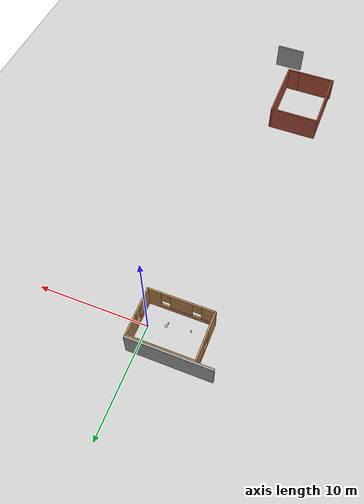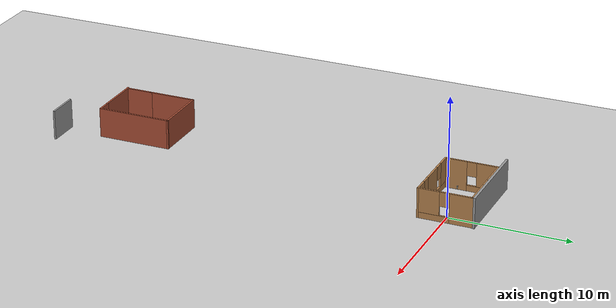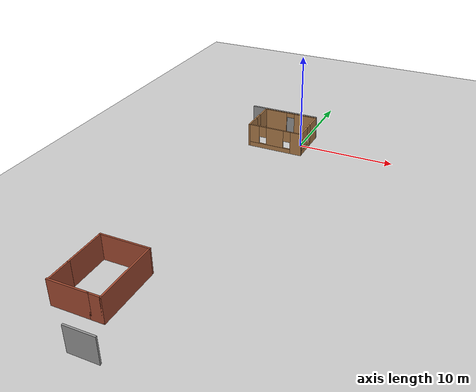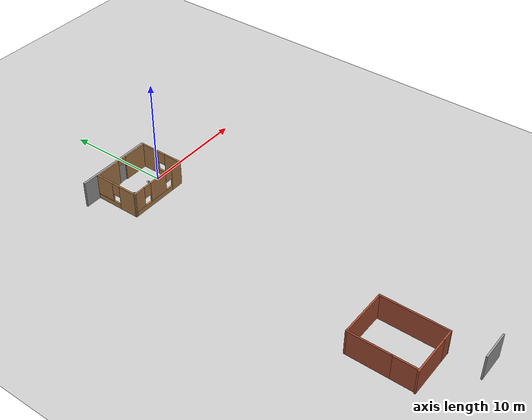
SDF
<sdf version="1.6">
 <world name="default">
  <light name="sun" type="directional">
   <pose>0 0 10 0 -0 0</pose>
   <diffuse>0.8 0.8 0.8 1</diffuse>
   <specular>0.2 0.2 0.2 1</specular>
   <attenuation>
    <range>1000</range>
    <constant>0.9</constant>
    <linear>0.01</linear>
    <quadratic>0.001</quadratic>
   </attenuation>
   <direction>-0.5 0.1 -0.9</direction>
  </light>
  <model name="ground_plane">
   <static>1</static>
   <link name="link">
    <collision name="collision">
     <geometry><plane><normal>0 0 1</normal><size>100 100</size></plane></geometry>
     <surface><friction><ode><mu>100</mu><mu2>50</mu2></ode></friction></surface>
    </collision>
    <visual name="visual">
     <cast_shadows>0</cast_shadows>
     <geometry><plane><normal>0 0 1</normal><size>100 100</size></plane></geometry>
     <material>
      <script><uri>file://media/materials/scripts/gazebo.material</uri><name>Gazebo/Grey</name></script>
     </material>
    </visual>
   </link>
  </model>
  <gravity>0 0 -1</gravity>
  <magnetic_field>6e-06 2.3e-05 -4.2e-05</magnetic_field>
  <atmosphere type="adiabatic"/>
  <physics name="default_physics" default="0" type="ode">
   <max_step_size>0.001</max_step_size>
   <real_time_factor>1</real_time_factor>
   <real_time_update_rate>1000</real_time_update_rate>
  </physics>
  <scene><ambient>0.4 0.4 0.4 1</ambient><background>0.7 0.7 0.7 1</background><shadows>1</shadows></scene>
  <audio><device>default</device></audio>
  <spherical_coordinates>
   <surface_model>EARTH_WGS84</surface_model>
   <latitude_deg>0</latitude_deg>
   <longitude_deg>0</longitude_deg>
   <elevation>0</elevation>
   <heading_deg>0</heading_deg>
  </spherical_coordinates>
  <model name="beer">
   <link name="link">
    <pose>0 0 0.115 0 -0 0</pose>
    <inertial>
     <mass>0.39</mass>
     <inertia><ixx>0.00058</ixx><ixy>0</ixy><ixz>0</ixz><iyy>0.00058</iyy><iyz>0</iyz><izz>0.00019</izz></inertia>
    </inertial>
    <collision name="collision">
     <geometry><cylinder><radius>0.055</radius><length>0.23</length></cylinder></geometry>
    </collision>
    <visual name="visual">
     <geometry><cylinder><radius>0.055</radius><length>0.23</length></cylinder></geometry>
     <material>
      <script>
       <uri>model://beer/materials/scripts</uri>
       <uri>model://beer/materials/textures</uri>
       <name>Beer/Diffuse</name>
      </script>
     </material>
    </visual>
   </link>
   <pose>-3.61997 -0.523036 0.774999 -2e-06 -1e-06 0.045468</pose>
  </model>
  <model name="ball_bearing">
   <link name="link">
    <pose>0 0 0.003 0 -0 0</pose>
    <inertial>
     <mass>0.0011</mass>
     <inertia>
      <ixx>3.96e-09</ixx>
      <ixy>0</ixy>
      <ixz>0</ixz>
      <iyy>3.96e-09</iyy>
      <iyz>0</iyz>
      <izz>3.96e-09</izz>
     </inertia>
    </inertial>
    <collision name="collision">
     <geometry><sphere><radius>0.003</radius></sphere></geometry>
     <surface>
      <contact>
       <poissons_ratio>0.305</poissons_ratio>
       <elastic_modulus>2e+11</elastic_modulus>
       <ode><kp>100000</kp><kd>100</kd><max_vel>100</max_vel><min_depth>0.001</min_depth></ode>
      </contact>
      <friction>
       <torsional>
        <coefficient>1</coefficient>
        <use_patch_radius>0</use_patch_radius>
        <surface_radius>0.01</surface_radius>
       </torsional>
      </friction>
     </surface>
    </collision>
    <visual name="visual">
     <geometry><sphere><radius>0.003</radius></sphere></geometry>
     <material>
      <script><uri>file://media/materials/scripts/gazebo.material</uri><name>Gazebo/Grey</name></script>
     </material>
    </visual>
    <velocity_decay><linear>0</linear><angular>0.005</angular></velocity_decay>
   </link>
   <pose>-1.8564 -0.002291 -0.001 0.000235 0.007912 1e-06</pose>
  </model>
  <model name="wall">
   <pose>-3.97543 -29.7286 0 0 -0 0</pose>
   <link name="Wall_0">
    <collision name="Wall_0_Collision">
     <geometry><box><size>2.75 0.15 2.5</size></box></geometry>
     <pose>0 0 1.25 0 -0 0</pose>
    </collision>
    <visual name="Wall_0_Visual">
     <pose>0 0 1.25 0 -0 0</pose>
     <geometry><box><size>2.75 0.15 2.5</size></box></geometry>
     <material>
      <script><uri>file://media/materials/scripts/gazebo.material</uri><name>Gazebo/Grey</name></script>
      <ambient>1 1 1 1</ambient>
     </material>
     <meta><layer>0</layer></meta>
    </visual>
    <pose>2.0521 -4.6544 0 0 -0 0</pose>
   </link>
   <link name="Wall_10">
    <collision name="Wall_10_Collision">
     <geometry><box><size>2.25 0.15 2.5</size></box></geometry>
     <pose>0 0 1.25 0 -0 0</pose>
    </collision>
    <visual name="Wall_10_Visual">
     <pose>0 0 1.25 0 -0 0</pose>
     <geometry><box><size>2.25 0.15 2.5</size></box></geometry>
     <material>
      <script><uri>file://media/materials/scripts/gazebo.material</uri><name>Gazebo/Bricks</name></script>
      <ambient>1 1 1 1</ambient>
     </material>
     <meta><layer>0</layer></meta>
    </visual>
    <pose>-3.2521 -0.245601 0 0 -0 -1.5708</pose>
   </link>
   <link name="Wall_13">
    <collision name="Wall_13_Collision">
     <geometry><box><size>3.75 0.15 2.5</size></box></geometry>
     <pose>0 0 1.25 0 -0 0</pose>
    </collision>
    <visual name="Wall_13_Visual">
     <pose>0 0 1.25 0 -0 0</pose>
     <geometry><box><size>3.75 0.15 2.5</size></box></geometry>
     <material>
      <script><uri>file://media/materials/scripts/gazebo.material</uri><name>Gazebo/Bricks</name></script>
      <ambient>1 1 1 1</ambient>
     </material>
     <meta><layer>0</layer></meta>
    </visual>
    <pose>-1.5521 -1.4456 0 0 -0 3.14159</pose>
   </link>
   <link name="Wall_2">
    <collision name="Wall_2_Collision">
     <geometry><box><size>1.25 0.15 2.5</size></box></geometry>
     <pose>0 0 1.25 0 -0 0</pose>
    </collision>
    <visual name="Wall_2_Visual">
     <pose>0 0 1.25 0 -0 0</pose>
     <geometry><box><size>1.25 0.15 2.5</size></box></geometry>
     <material>
      <script><uri>file://media/materials/scripts/gazebo.material</uri><name>Gazebo/Bricks</name></script>
      <ambient>1 1 1 1</ambient>
     </material>
     <meta><layer>0</layer></meta>
    </visual>
    <pose>0.797899 -1.4456 0 0 -0 0</pose>
   </link>
   <link name="Wall_3">
    <collision name="Wall_3_Collision">
     <geometry><box><size>6.25 0.15 2.5</size></box></geometry>
     <pose>0 0 1.25 0 -0 0</pose>
    </collision>
    <visual name="Wall_3_Visual">
     <pose>0 0 1.25 0 -0 0</pose>
     <geometry><box><size>6.25 0.15 2.5</size></box></geometry>
     <material>
      <script><uri>file://media/materials/scripts/gazebo.material</uri><name>Gazebo/Bricks</name></script>
      <ambient>1 1 1 1</ambient>
     </material>
     <meta><layer>0</layer></meta>
    </visual>
    <pose>1.3479 1.6044 0 0 -0 1.5708</pose>
   </link>
   <link name="Wall_7">
    <collision name="Wall_7_Collision">
     <geometry><box><size>4.75 0.15 2.5</size></box></geometry>
     <pose>0 0 1.25 0 -0 0</pose>
    </collision>
    <visual name="Wall_7_Visual">
     <pose>0 0 1.25 0 -0 0</pose>
     <geometry><box><size>4.75 0.15 2.5</size></box></geometry>
     <material>
      <script><uri>file://media/materials/scripts/gazebo.material</uri><name>Gazebo/Bricks</name></script>
      <ambient>1 1 1 1</ambient>
     </material>
     <meta><layer>0</layer></meta>
    </visual>
    <pose>-0.952101 4.6544 0 0 -0 3.14159</pose>
   </link>
   <link name="Wall_8">
    <collision name="Wall_8_Collision">
     <geometry><box><size>4 0.15 2.5</size></box></geometry>
     <pose>0 0 1.25 0 -0 0</pose>
    </collision>
    <visual name="Wall_8_Visual">
     <pose>0 0 1.25 0 -0 0</pose>
     <geometry><box><size>4 0.15 2.5</size></box></geometry>
     <material>
      <script><uri>file://media/materials/scripts/gazebo.material</uri><name>Gazebo/Bricks</name></script>
      <ambient>1 1 1 1</ambient>
     </material>
     <meta><layer>0</layer></meta>
    </visual>
    <pose>-3.2521 2.7294 0 0 -0 -1.5708</pose>
   </link>
   <static>1</static>
  </model>
  <model name="book_16">
   <link name="cover">
    <pose>0 -0.000108 0.015405 0 -0 0</pose>
    <visual name="visual">
     <geometry><box><size>0.245 0.16 0.03</size></box></geometry>
     <material>
      <script>
       <uri>model://book_16/materials/scripts</uri>
       <uri>model://book_16/materials/textures</uri>
       <name>book_16</name>
      </script>
     </material>
    </visual>
    <collision name="collision"><geometry><box><size>0.245 0.16 0.03</size></box></geometry></collision>
   </link>
   <link name="page">
    <pose>0 0.000608 0.015405 0 -0 0</pose>
    <visual name="visual">
     <geometry><box><size>0.24502 0.15862 0.028</size></box></geometry>
     <material>
      <lighting>1</lighting>
      <ambient>1 1 1 1</ambient>
      <diffuse>1 1 1 1</diffuse>
      <specular>0.01 0.01 0.01 1</specular>
      <emissive>0 0 0 1</emissive>
      <shader type="vertex"><normal_map>__default__</normal_map></shader>
     </material>
    </visual>
    <collision name="collision"><geometry><box><size>0.245 0.16 0.03</size></box></geometry></collision>
   </link>
   <static>1</static>
   <pose>-1.63684 -0.471015 0.897382 0.000432 -1.56136 0</pose>
  </model>
  <model name="book_15">
   <link name="cover">
    <pose>0 -0.000108 0.015405 0 -0 0</pose>
    <visual name="visual">
     <geometry><box><size>0.245 0.16 0.03</size></box></geometry>
     <material>
      <script>
       <uri>model://book_15/materials/scripts</uri>
       <uri>model://book_15/materials/textures</uri>
       <name>book_15</name>
      </script>
     </material>
    </visual>
    <collision name="collision"><geometry><box><size>0.245 0.16 0.03</size></box></geometry></collision>
   </link>
   <link name="page">
    <pose>0 0.000608 0.015405 0 -0 0</pose>
    <visual name="visual">
     <geometry><box><size>0.24502 0.15862 0.028</size></box></geometry>
     <material>
      <lighting>1</lighting>
      <ambient>1 1 1 1</ambient>
      <diffuse>1 1 1 1</diffuse>
      <specular>0.01 0.01 0.01 1</specular>
      <emissive>0 0 0 1</emissive>
      <shader type="vertex"><normal_map>__default__</normal_map></shader>
     </material>
    </visual>
    <collision name="collision"><geometry><box><size>0.245 0.16 0.03</size></box></geometry></collision>
   </link>
   <static>1</static>
   <pose>-1.54166 -0.245702 0.775787 0 0 -0.644159</pose>
  </model>
  <model name="wall6x45_4window_cloor">
   <pose>-2.15514 0.09856 0 0 -0 0</pose>
   <link name="Wall_0">
    <pose>0 2.175 0 0 -0 0</pose>
    <visual name="Wall_0_Visual_0">
     <pose>-1.7125 0 1.25 0 -0 0</pose>
     <geometry><box><size>2.575 0.15 2.5</size></box></geometry>
     <material>
      <script><uri>file://media/materials/scripts/gazebo.material</uri><name>Gazebo/Wood</name></script>
      <ambient>1 1 1 1</ambient>
     </material>
     <meta><layer>0</layer></meta>
    </visual>
    <collision name="Wall_0_Collision_0">
     <geometry><box><size>2.575 0.15 2.5</size></box></geometry>
     <pose>-1.7125 0 1.25 0 -0 0</pose>
    </collision>
    <visual name="Wall_0_Visual_1">
     <pose>1.7375 0 1.25 0 -0 0</pose>
     <geometry><box><size>2.525 0.15 2.5</size></box></geometry>
     <material>
      <script><uri>file://media/materials/scripts/gazebo.material</uri><name>Gazebo/Wood</name></script>
      <ambient>1 1 1 1</ambient>
     </material>
     <meta><layer>0</layer></meta>
    </visual>
    <collision name="Wall_0_Collision_1">
     <geometry><box><size>2.525 0.15 2.5</size></box></geometry>
     <pose>1.7375 0 1.25 0 -0 0</pose>
    </collision>
    <visual name="Wall_0_Visual_2">
     <pose>0.025 0 2.25 0 -0 0</pose>
     <geometry><box><size>0.9 0.15 0.5</size></box></geometry>
     <material>
      <script><uri>file://media/materials/scripts/gazebo.material</uri><name>Gazebo/Wood</name></script>
      <ambient>1 1 1 1</ambient>
     </material>
     <meta><layer>0</layer></meta>
    </visual>
    <collision name="Wall_0_Collision_2">
     <geometry><box><size>0.9 0.15 0.5</size></box></geometry>
     <pose>0.025 0 2.25 0 -0 0</pose>
    </collision>
   </link>
   <link name="Wall_1">
    <pose>2.925 -0 0 0 -0 -1.5708</pose>
    <visual name="Wall_1_Visual_0">
     <pose>-1.3075 0 1.25 0 -0 0</pose>
     <geometry><box><size>1.885 0.15 2.5</size></box></geometry>
     <material>
      <script><uri>file://media/materials/scripts/gazebo.material</uri><name>Gazebo/Wood</name></script>
      <ambient>1 1 1 1</ambient>
     </material>
     <meta><layer>0</layer></meta>
    </visual>
    <collision name="Wall_1_Collision_0">
     <geometry><box><size>1.885 0.15 2.5</size></box></geometry>
     <pose>-1.3075 0 1.25 0 -0 0</pose>
    </collision>
    <visual name="Wall_1_Visual_1">
     <pose>0.9425 0 0.25 0 -0 0</pose>
     <geometry><box><size>2.615 0.15 0.5</size></box></geometry>
     <material>
      <script><uri>file://media/materials/scripts/gazebo.material</uri><name>Gazebo/Wood</name></script>
      <ambient>1 1 1 1</ambient>
     </material>
     <meta><layer>0</layer></meta>
    </visual>
    <collision name="Wall_1_Collision_1">
     <geometry><box><size>2.615 0.15 0.5</size></box></geometry>
     <pose>0.9425 0 0.25 0 -0 0</pose>
    </collision>
    <visual name="Wall_1_Visual_2">
     <pose>1.3425 0 1.5 0 -0 0</pose>
     <geometry><box><size>1.815 0.15 2</size></box></geometry>
     <material>
      <script><uri>file://media/materials/scripts/gazebo.material</uri><name>Gazebo/Wood</name></script>
      <ambient>1 1 1 1</ambient>
     </material>
     <meta><layer>0</layer></meta>
    </visual>
    <collision name="Wall_1_Collision_2">
     <geometry><box><size>1.815 0.15 2</size></box></geometry>
     <pose>1.3425 0 1.5 0 -0 0</pose>
    </collision>
    <visual name="Wall_1_Visual_3">
     <pose>0.035 0 1.9 0 -0 0</pose>
     <geometry><box><size>0.8 0.15 1.2</size></box></geometry>
     <material>
      <script><uri>file://media/materials/scripts/gazebo.material</uri><name>Gazebo/Wood</name></script>
      <ambient>1 1 1 1</ambient>
     </material>
     <meta><layer>0</layer></meta>
    </visual>
    <collision name="Wall_1_Collision_3">
     <geometry><box><size>0.8 0.15 1.2</size></box></geometry>
     <pose>0.035 0 1.9 0 -0 0</pose>
    </collision>
   </link>
   <link name="Wall_2">
    <pose>0 -2.175 0 0 -0 3.14159</pose>
    <visual name="Wall_2_Visual_0">
     <pose>-2.3825 0 1.25 0 -0 0</pose>
     <geometry><box><size>1.235 0.15 2.5</size></box></geometry>
     <material>
      <script><uri>file://media/materials/scripts/gazebo.material</uri><name>Gazebo/Wood</name></script>
      <ambient>1 1 1 1</ambient>
     </material>
     <meta><layer>0</layer></meta>
    </visual>
    <collision name="Wall_2_Collision_0">
     <geometry><box><size>1.235 0.15 2.5</size></box></geometry>
     <pose>-2.3825 0 1.25 0 -0 0</pose>
    </collision>
    <visual name="Wall_2_Visual_1">
     <pose>0.6175 0 0.25 0 -0 0</pose>
     <geometry><box><size>4.765 0.15 0.5</size></box></geometry>
     <material>
      <script><uri>file://media/materials/scripts/gazebo.material</uri><name>Gazebo/Wood</name></script>
      <ambient>1 1 1 1</ambient>
     </material>
     <meta><layer>0</layer></meta>
    </visual>
    <collision name="Wall_2_Collision_1">
     <geometry><box><size>4.765 0.15 0.5</size></box></geometry>
     <pose>0.6175 0 0.25 0 -0 0</pose>
    </collision>
    <visual name="Wall_2_Visual_2">
     <pose>0.005 0 1.5 0 -0 0</pose>
     <geometry><box><size>1.94 0.15 2</size></box></geometry>
     <material>
      <script><uri>file://media/materials/scripts/gazebo.material</uri><name>Gazebo/Wood</name></script>
      <ambient>1 1 1 1</ambient>
     </material>
     <meta><layer>0</layer></meta>
    </visual>
    <collision name="Wall_2_Collision_2">
     <geometry><box><size>1.94 0.15 2</size></box></geometry>
     <pose>0.005 0 1.5 0 -0 0</pose>
    </collision>
    <visual name="Wall_2_Visual_3">
     <pose>2.3875 0 1.5 0 -0 0</pose>
     <geometry><box><size>1.225 0.15 2</size></box></geometry>
     <material>
      <script><uri>file://media/materials/scripts/gazebo.material</uri><name>Gazebo/Wood</name></script>
      <ambient>1 1 1 1</ambient>
     </material>
     <meta><layer>0</layer></meta>
    </visual>
    <collision name="Wall_2_Collision_3">
     <geometry><box><size>1.225 0.15 2</size></box></geometry>
     <pose>2.3875 0 1.5 0 -0 0</pose>
    </collision>
    <visual name="Wall_2_Visual_4">
     <pose>-1.365 0 1.9 0 -0 0</pose>
     <geometry><box><size>0.8 0.15 1.2</size></box></geometry>
     <material>
      <script><uri>file://media/materials/scripts/gazebo.material</uri><name>Gazebo/Wood</name></script>
      <ambient>1 1 1 1</ambient>
     </material>
     <meta><layer>0</layer></meta>
    </visual>
    <collision name="Wall_2_Collision_4">
     <geometry><box><size>0.8 0.15 1.2</size></box></geometry>
     <pose>-1.365 0 1.9 0 -0 0</pose>
    </collision>
    <visual name="Wall_2_Visual_5">
     <pose>1.375 0 1.9 0 -0 0</pose>
     <geometry><box><size>0.8 0.15 1.2</size></box></geometry>
     <material>
      <script><uri>file://media/materials/scripts/gazebo.material</uri><name>Gazebo/Wood</name></script>
      <ambient>1 1 1 1</ambient>
     </material>
     <meta><layer>0</layer></meta>
    </visual>
    <collision name="Wall_2_Collision_5">
     <geometry><box><size>0.8 0.15 1.2</size></box></geometry>
     <pose>1.375 0 1.9 0 -0 0</pose>
    </collision>
   </link>
   <link name="Wall_3">
    <pose>-2.925 -0 0 0 -0 1.5708</pose>
    <visual name="Wall_3_Visual_0">
     <pose>-1.3075 0 1.25 0 -0 0</pose>
     <geometry><box><size>1.885 0.15 2.5</size></box></geometry>
     <material>
      <script><uri>file://media/materials/scripts/gazebo.material</uri><name>Gazebo/Wood</name></script>
      <ambient>1 1 1 1</ambient>
     </material>
     <meta><layer>0</layer></meta>
    </visual>
    <collision name="Wall_3_Collision_0">
     <geometry><box><size>1.885 0.15 2.5</size></box></geometry>
     <pose>-1.3075 0 1.25 0 -0 0</pose>
    </collision>
    <visual name="Wall_3_Visual_1">
     <pose>0.9425 0 0.25 0 -0 0</pose>
     <geometry><box><size>2.615 0.15 0.5</size></box></geometry>
     <material>
      <script><uri>file://media/materials/scripts/gazebo.material</uri><name>Gazebo/Wood</name></script>
      <ambient>1 1 1 1</ambient>
     </material>
     <meta><layer>0</layer></meta>
    </visual>
    <collision name="Wall_3_Collision_1">
     <geometry><box><size>2.615 0.15 0.5</size></box></geometry>
     <pose>0.9425 0 0.25 0 -0 0</pose>
    </collision>
    <visual name="Wall_3_Visual_2">
     <pose>1.3425 0 1.5 0 -0 0</pose>
     <geometry><box><size>1.815 0.15 2</size></box></geometry>
     <material>
      <script><uri>file://media/materials/scripts/gazebo.material</uri><name>Gazebo/Wood</name></script>
      <ambient>1 1 1 1</ambient>
     </material>
     <meta><layer>0</layer></meta>
    </visual>
    <collision name="Wall_3_Collision_2">
     <geometry><box><size>1.815 0.15 2</size></box></geometry>
     <pose>1.3425 0 1.5 0 -0 0</pose>
    </collision>
    <visual name="Wall_3_Visual_3">
     <pose>0.035 0 1.9 0 -0 0</pose>
     <geometry><box><size>0.8 0.15 1.2</size></box></geometry>
     <material>
      <script><uri>file://media/materials/scripts/gazebo.material</uri><name>Gazebo/Wood</name></script>
      <ambient>1 1 1 1</ambient>
     </material>
     <meta><layer>0</layer></meta>
    </visual>
    <collision name="Wall_3_Collision_3">
     <geometry><box><size>0.8 0.15 1.2</size></box></geometry>
     <pose>0.035 0 1.9 0 -0 0</pose>
    </collision>
   </link>
   <static>1</static>
  </model>
  <model name="grey_wall">
   <static>1</static>
   <link name="link">
    <pose>0 0 1.4 0 -0 0</pose>
    <collision name="collision"><geometry><box><size>7.5 0.2 2.8</size></box></geometry></collision>
    <visual name="visual">
     <cast_shadows>0</cast_shadows>
     <geometry><box><size>7.5 0.2 2.8</size></box></geometry>
     <material>
      <script>
       <uri>model://grey_wall/materials/scripts</uri>
       <uri>model://grey_wall/materials/textures</uri>
       <name>vrc/grey_wall</name>
      </script>
     </material>
    </visual>
   </link>
   <pose>-2.90671 2.42427 -0.285594 0 -0 0</pose>
  </model>
 </world>
</sdf>
